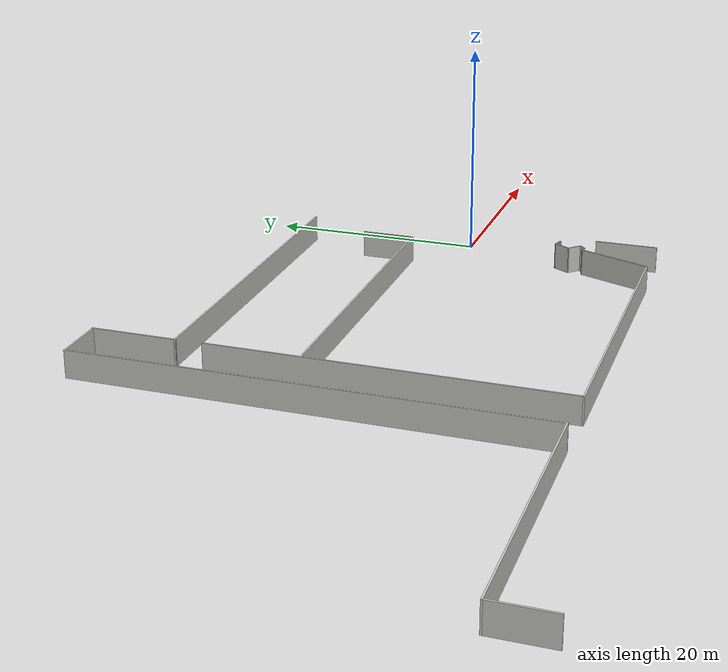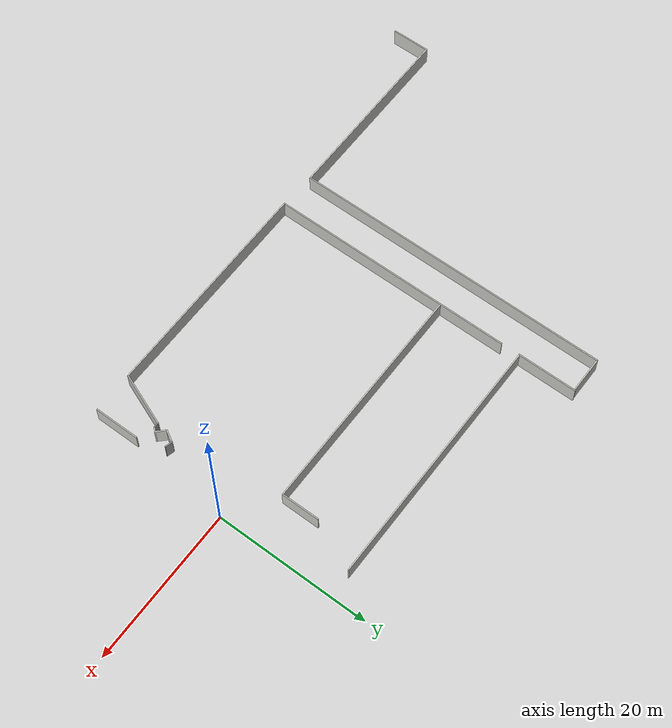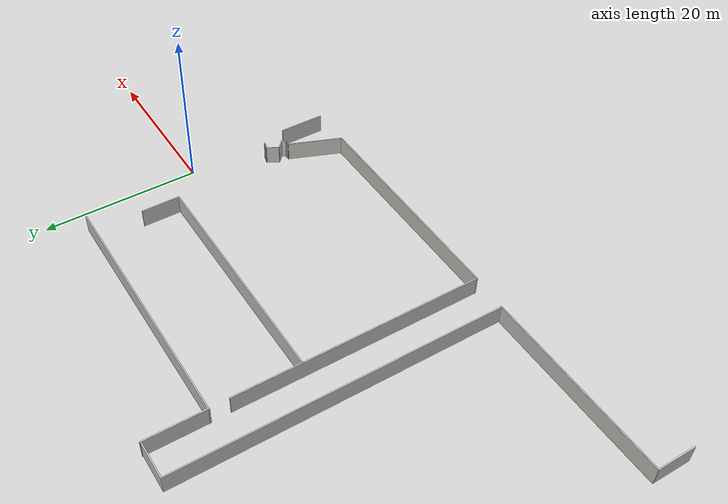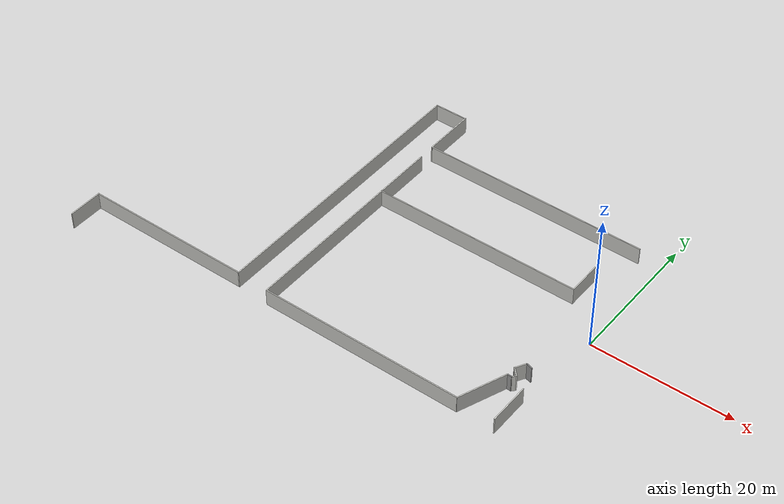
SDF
<sdf version="1.7">
 <model name="MIT_Tunnel_mod">
  <link name="Wall_10">
   <pose>-19.1952 15.5558 0 0 0 -0.001042</pose>
   <visual name="Wall_10_Visual">
    <pose>0 0 1.25 0 -0 0</pose>
    <geometry><box><size>32.6917 0.15 2.5</size></box></geometry>
    <material>
     <script><uri>file://media/materials/scripts/gazebo.material</uri><name>Gazebo/CeilingTiled</name></script>
     <ambient>1 1 1 1</ambient>
     <shader type="pixel"/>
    </material>
   </visual>
   <collision name="Wall_10_Collision">
    <pose>0 0 1.25 0 -0 0</pose>
    <geometry><box><size>32.6917 0.15 2.5</size></box></geometry>
    <surface>
     <friction>
      <ode><mu>1</mu><mu2>1</mu2><fdir1>0 0 0</fdir1><slip1>0</slip1><slip2>0</slip2></ode>
      <torsional>
       <coefficient>1</coefficient>
       <patch_radius>0</patch_radius>
       <surface_radius>0</surface_radius>
       <use_patch_radius>1</use_patch_radius>
       <ode><slip>0</slip></ode>
      </torsional>
     </friction>
     <bounce><restitution_coefficient>0</restitution_coefficient><threshold>1e+06</threshold></bounce>
     <contact>
      <collide_without_contact>0</collide_without_contact>
      <collide_without_contact_bitmask>1</collide_without_contact_bitmask>
      <collide_bitmask>1</collide_bitmask>
      <ode>
       <soft_cfm>0</soft_cfm>
       <soft_erp>0.2</soft_erp>
       <kp>1e+13</kp>
       <kd>1</kd>
       <max_vel>0.01</max_vel>
       <min_depth>0</min_depth>
      </ode>
      <bullet>
       <split_impulse>1</split_impulse>
       <split_impulse_penetration_threshold>-0.01</split_impulse_penetration_threshold>
       <soft_cfm>0</soft_cfm>
       <soft_erp>0.2</soft_erp>
       <kp>1e+13</kp>
       <kd>1</kd>
      </bullet>
     </contact>
    </surface>
   </collision>
  </link>
  <link name="Wall_2">
   <pose>-52.25 -18.2689 0 0 -0 0</pose>
   <visual name="Wall_2_Visual">
    <pose>0 0 1.25 0 -0 0</pose>
    <geometry><box><size>24.25 0.15 2.5</size></box></geometry>
    <material>
     <script><uri>file://media/materials/scripts/gazebo.material</uri><name>Gazebo/CeilingTiled</name></script>
     <ambient>1 1 1 1</ambient>
     <shader type="pixel"/>
    </material>
   </visual>
   <collision name="Wall_2_Collision">
    <pose>0 0 1.25 0 -0 0</pose>
    <geometry><box><size>24.25 0.15 2.5</size></box></geometry>
    <surface>
     <friction>
      <ode><mu>1</mu><mu2>1</mu2><fdir1>0 0 0</fdir1><slip1>0</slip1><slip2>0</slip2></ode>
      <torsional>
       <coefficient>1</coefficient>
       <patch_radius>0</patch_radius>
       <surface_radius>0</surface_radius>
       <use_patch_radius>1</use_patch_radius>
       <ode><slip>0</slip></ode>
      </torsional>
     </friction>
     <bounce><restitution_coefficient>0</restitution_coefficient><threshold>1e+06</threshold></bounce>
     <contact>
      <collide_without_contact>0</collide_without_contact>
      <collide_without_contact_bitmask>1</collide_without_contact_bitmask>
      <collide_bitmask>1</collide_bitmask>
      <ode>
       <soft_cfm>0</soft_cfm>
       <soft_erp>0.2</soft_erp>
       <kp>1e+13</kp>
       <kd>1</kd>
       <max_vel>0.01</max_vel>
       <min_depth>0</min_depth>
      </ode>
      <bullet>
       <split_impulse>1</split_impulse>
       <split_impulse_penetration_threshold>-0.01</split_impulse_penetration_threshold>
       <soft_cfm>0</soft_cfm>
       <soft_erp>0.2</soft_erp>
       <kp>1e+13</kp>
       <kd>1</kd>
      </bullet>
     </contact>
    </surface>
   </collision>
  </link>
  <link name="Wall_29">
   <pose>-1.14312 -15.679 0 0 0 -1.56921</pose>
   <visual name="Wall_29_Visual">
    <pose>0 0 1.25 0 -0 0</pose>
    <geometry><box><size>5.87777 0.15 2.5</size></box></geometry>
    <material>
     <script><uri>file://media/materials/scripts/gazebo.material</uri><name>Gazebo/CeilingTiled</name></script>
     <ambient>1 1 1 1</ambient>
     <shader type="pixel"/>
    </material>
   </visual>
   <collision name="Wall_29_Collision">
    <pose>0 0 1.25 0 -0 0</pose>
    <geometry><box><size>5.87777 0.15 2.5</size></box></geometry>
    <surface>
     <friction>
      <ode><mu>1</mu><mu2>1</mu2><fdir1>0 0 0</fdir1><slip1>0</slip1><slip2>0</slip2></ode>
      <torsional>
       <coefficient>1</coefficient>
       <patch_radius>0</patch_radius>
       <surface_radius>0</surface_radius>
       <use_patch_radius>1</use_patch_radius>
       <ode><slip>0</slip></ode>
      </torsional>
     </friction>
     <bounce><restitution_coefficient>0</restitution_coefficient><threshold>1e+06</threshold></bounce>
     <contact>
      <collide_without_contact>0</collide_without_contact>
      <collide_without_contact_bitmask>1</collide_without_contact_bitmask>
      <collide_bitmask>1</collide_bitmask>
      <ode>
       <soft_cfm>0</soft_cfm>
       <soft_erp>0.2</soft_erp>
       <kp>1e+13</kp>
       <kd>1</kd>
       <max_vel>0.01</max_vel>
       <min_depth>0</min_depth>
      </ode>
      <bullet>
       <split_impulse>1</split_impulse>
       <split_impulse_penetration_threshold>-0.01</split_impulse_penetration_threshold>
       <soft_cfm>0</soft_cfm>
       <soft_erp>0.2</soft_erp>
       <kp>1e+13</kp>
       <kd>1</kd>
      </bullet>
     </contact>
    </surface>
   </collision>
  </link>
  <link name="Wall_34">
   <pose>-64.3 -20.6939 0 0 0 -1.5708</pose>
   <visual name="Wall_34_Visual">
    <pose>0 0 1.25 0 -0 0</pose>
    <geometry><box><size>5 0.15 2.5</size></box></geometry>
    <material>
     <script><uri>file://media/materials/scripts/gazebo.material</uri><name>Gazebo/CeilingTiled</name></script>
     <ambient>1 1 1 1</ambient>
     <shader type="pixel"/>
    </material>
   </visual>
   <collision name="Wall_34_Collision">
    <pose>0 0 1.25 0 -0 0</pose>
    <geometry><box><size>5 0.15 2.5</size></box></geometry>
    <surface>
     <friction>
      <ode><mu>1</mu><mu2>1</mu2><fdir1>0 0 0</fdir1><slip1>0</slip1><slip2>0</slip2></ode>
      <torsional>
       <coefficient>1</coefficient>
       <patch_radius>0</patch_radius>
       <surface_radius>0</surface_radius>
       <use_patch_radius>1</use_patch_radius>
       <ode><slip>0</slip></ode>
      </torsional>
     </friction>
     <bounce><restitution_coefficient>0</restitution_coefficient><threshold>1e+06</threshold></bounce>
     <contact>
      <collide_without_contact>0</collide_without_contact>
      <collide_without_contact_bitmask>1</collide_without_contact_bitmask>
      <collide_bitmask>1</collide_bitmask>
      <ode>
       <soft_cfm>0</soft_cfm>
       <soft_erp>0.2</soft_erp>
       <kp>1e+13</kp>
       <kd>1</kd>
       <max_vel>0.01</max_vel>
       <min_depth>0</min_depth>
      </ode>
      <bullet>
       <split_impulse>1</split_impulse>
       <split_impulse_penetration_threshold>-0.01</split_impulse_penetration_threshold>
       <soft_cfm>0</soft_cfm>
       <soft_erp>0.2</soft_erp>
       <kp>1e+13</kp>
       <kd>1</kd>
      </bullet>
     </contact>
    </surface>
   </collision>
  </link>
  <link name="Wall_37">
   <pose>-37.9 23.0811 0 0 -0 0</pose>
   <visual name="Wall_37_Visual">
    <pose>0 0 1.25 0 -0 0</pose>
    <geometry><box><size>4.75 0.15 2.5</size></box></geometry>
    <material>
     <script><uri>file://media/materials/scripts/gazebo.material</uri><name>Gazebo/CeilingTiled</name></script>
     <ambient>1 1 1 1</ambient>
     <shader type="pixel"/>
    </material>
   </visual>
   <collision name="Wall_37_Collision">
    <pose>0 0 1.25 0 -0 0</pose>
    <geometry><box><size>4.75 0.15 2.5</size></box></geometry>
    <surface>
     <friction>
      <ode><mu>1</mu><mu2>1</mu2><fdir1>0 0 0</fdir1><slip1>0</slip1><slip2>0</slip2></ode>
      <torsional>
       <coefficient>1</coefficient>
       <patch_radius>0</patch_radius>
       <surface_radius>0</surface_radius>
       <use_patch_radius>1</use_patch_radius>
       <ode><slip>0</slip></ode>
      </torsional>
     </friction>
     <bounce><restitution_coefficient>0</restitution_coefficient><threshold>1e+06</threshold></bounce>
     <contact>
      <collide_without_contact>0</collide_without_contact>
      <collide_without_contact_bitmask>1</collide_without_contact_bitmask>
      <collide_bitmask>1</collide_bitmask>
      <ode>
       <soft_cfm>0</soft_cfm>
       <soft_erp>0.2</soft_erp>
       <kp>1e+13</kp>
       <kd>1</kd>
       <max_vel>0.01</max_vel>
       <min_depth>0</min_depth>
      </ode>
      <bullet>
       <split_impulse>1</split_impulse>
       <split_impulse_penetration_threshold>-0.01</split_impulse_penetration_threshold>
       <soft_cfm>0</soft_cfm>
       <soft_erp>0.2</soft_erp>
       <kp>1e+13</kp>
       <kd>1</kd>
      </bullet>
     </contact>
    </surface>
   </collision>
  </link>
  <link name="Wall_41">
   <pose>-35.4175 -2.72616 0 0 -0 1.5708</pose>
   <visual name="Wall_41_Visual">
    <pose>0 0 1.25 0 -0 0</pose>
    <geometry><box><size>31.75 0.15 2.5</size></box></geometry>
    <material>
     <script><uri>file://media/materials/scripts/gazebo.material</uri><name>Gazebo/CeilingTiled</name></script>
     <ambient>1 1 1 1</ambient>
     <shader type="pixel"/>
    </material>
   </visual>
   <collision name="Wall_41_Collision">
    <pose>0 0 1.25 0 -0 0</pose>
    <geometry><box><size>31.75 0.15 2.5</size></box></geometry>
    <surface>
     <friction>
      <ode><mu>1</mu><mu2>1</mu2><fdir1>0 0 0</fdir1><slip1>0</slip1><slip2>0</slip2></ode>
      <torsional>
       <coefficient>1</coefficient>
       <patch_radius>0</patch_radius>
       <surface_radius>0</surface_radius>
       <use_patch_radius>1</use_patch_radius>
       <ode><slip>0</slip></ode>
      </torsional>
     </friction>
     <bounce><restitution_coefficient>0</restitution_coefficient><threshold>1e+06</threshold></bounce>
     <contact>
      <collide_without_contact>0</collide_without_contact>
      <collide_without_contact_bitmask>1</collide_without_contact_bitmask>
      <collide_bitmask>1</collide_bitmask>
      <ode>
       <soft_cfm>0</soft_cfm>
       <soft_erp>0.2</soft_erp>
       <kp>1e+13</kp>
       <kd>1</kd>
       <max_vel>0.01</max_vel>
       <min_depth>0</min_depth>
      </ode>
      <bullet>
       <split_impulse>1</split_impulse>
       <split_impulse_penetration_threshold>-0.01</split_impulse_penetration_threshold>
       <soft_cfm>0</soft_cfm>
       <soft_erp>0.2</soft_erp>
       <kp>1e+13</kp>
       <kd>1</kd>
      </bullet>
     </contact>
    </surface>
   </collision>
  </link>
  <link name="Wall_43">
   <pose>-20.4925 4.50154 0 0 -0 0</pose>
   <visual name="Wall_43_Visual">
    <pose>0 0 1.25 0 -0 0</pose>
    <geometry><box><size>30 0.15 2.5</size></box></geometry>
    <material>
     <script><uri>file://media/materials/scripts/gazebo.material</uri><name>Gazebo/CeilingTiled</name></script>
     <ambient>1 1 1 1</ambient>
     <shader type="pixel"/>
    </material>
   </visual>
   <collision name="Wall_43_Collision">
    <pose>0 0 1.25 0 -0 0</pose>
    <geometry><box><size>30 0.15 2.5</size></box></geometry>
    <surface>
     <friction>
      <ode><mu>1</mu><mu2>1</mu2><fdir1>0 0 0</fdir1><slip1>0</slip1><slip2>0</slip2></ode>
      <torsional>
       <coefficient>1</coefficient>
       <patch_radius>0</patch_radius>
       <surface_radius>0</surface_radius>
       <use_patch_radius>1</use_patch_radius>
       <ode><slip>0</slip></ode>
      </torsional>
     </friction>
     <bounce><restitution_coefficient>0</restitution_coefficient><threshold>1e+06</threshold></bounce>
     <contact>
      <collide_without_contact>0</collide_without_contact>
      <collide_without_contact_bitmask>1</collide_without_contact_bitmask>
      <collide_bitmask>1</collide_bitmask>
      <ode>
       <soft_cfm>0</soft_cfm>
       <soft_erp>0.2</soft_erp>
       <kp>1e+13</kp>
       <kd>1</kd>
       <max_vel>0.01</max_vel>
       <min_depth>0</min_depth>
      </ode>
      <bullet>
       <split_impulse>1</split_impulse>
       <split_impulse_penetration_threshold>-0.01</split_impulse_penetration_threshold>
       <soft_cfm>0</soft_cfm>
       <soft_erp>0.2</soft_erp>
       <kp>1e+13</kp>
       <kd>1</kd>
      </bullet>
     </contact>
    </surface>
   </collision>
  </link>
  <link name="Wall_44">
   <pose>-5.56746 6.92907 0 0 0 -1.5708</pose>
   <inertial>
    <mass>1</mass>
    <inertia><ixx>1</ixx><ixy>0</ixy><ixz>0</ixz><iyy>1</iyy><iyz>0</iyz><izz>1</izz></inertia>
   </inertial>
   <visual name="Wall_44_Visual">
    <pose>0 0 1.25 0 -0 0</pose>
    <geometry><box><size>5 0.15 2.5</size></box></geometry>
    <material>
     <script><uri>file://media/materials/scripts/gazebo.material</uri><name>Gazebo/CeilingTiled</name></script>
     <ambient>1 1 1 1</ambient>
     <shader type="pixel"><normal_map>__default__</normal_map></shader>
     <diffuse>1 1 1 1</diffuse>
     <specular>0 0 0 1</specular>
     <emissive>0 0 0 1</emissive>
    </material>
   </visual>
   <collision name="Wall_44_Collision">
    <pose>0 0 1.25 0 -0 0</pose>
    <geometry><box><size>5 0.15 2.5</size></box></geometry>
    <surface>
     <friction>
      <ode><mu>1</mu><mu2>1</mu2><fdir1>0 0 0</fdir1><slip1>0</slip1><slip2>0</slip2></ode>
      <torsional>
       <coefficient>1</coefficient>
       <patch_radius>0</patch_radius>
       <surface_radius>0</surface_radius>
       <use_patch_radius>1</use_patch_radius>
       <ode><slip>0</slip></ode>
      </torsional>
     </friction>
     <bounce><restitution_coefficient>0</restitution_coefficient><threshold>1e+06</threshold></bounce>
     <contact>
      <collide_without_contact>0</collide_without_contact>
      <collide_without_contact_bitmask>1</collide_without_contact_bitmask>
      <collide_bitmask>1</collide_bitmask>
      <ode>
       <soft_cfm>0</soft_cfm>
       <soft_erp>0.2</soft_erp>
       <kp>1e+13</kp>
       <kd>1</kd>
       <max_vel>0.01</max_vel>
       <min_depth>0</min_depth>
      </ode>
      <bullet>
       <split_impulse>1</split_impulse>
       <split_impulse_penetration_threshold>-0.01</split_impulse_penetration_threshold>
       <soft_cfm>0</soft_cfm>
       <soft_erp>0.2</soft_erp>
       <kp>1e+13</kp>
       <kd>1</kd>
      </bullet>
     </contact>
    </surface>
   </collision>
  </link>
  <link name="Wall_5">
   <pose>-40.2 2.40609 0 0 -0 1.5708</pose>
   <visual name="Wall_5_Visual">
    <pose>0 0 1.25 0 -0 0</pose>
    <geometry><box><size>41.5 0.15 2.5</size></box></geometry>
    <material>
     <script><uri>file://media/materials/scripts/gazebo.material</uri><name>Gazebo/CeilingTiled</name></script>
     <ambient>1 1 1 1</ambient>
     <shader type="pixel"/>
    </material>
   </visual>
   <collision name="Wall_5_Collision">
    <pose>0 0 1.25 0 -0 0</pose>
    <geometry><box><size>41.5 0.15 2.5</size></box></geometry>
    <surface>
     <friction>
      <ode><mu>1</mu><mu2>1</mu2><fdir1>0 0 0</fdir1><slip1>0</slip1><slip2>0</slip2></ode>
      <torsional>
       <coefficient>1</coefficient>
       <patch_radius>0</patch_radius>
       <surface_radius>0</surface_radius>
       <use_patch_radius>1</use_patch_radius>
       <ode><slip>0</slip></ode>
      </torsional>
     </friction>
     <bounce><restitution_coefficient>0</restitution_coefficient><threshold>1e+06</threshold></bounce>
     <contact>
      <collide_without_contact>0</collide_without_contact>
      <collide_without_contact_bitmask>1</collide_without_contact_bitmask>
      <collide_bitmask>1</collide_bitmask>
      <ode>
       <soft_cfm>0</soft_cfm>
       <soft_erp>0.2</soft_erp>
       <kp>1e+13</kp>
       <kd>1</kd>
       <max_vel>0.01</max_vel>
       <min_depth>0</min_depth>
      </ode>
      <bullet>
       <split_impulse>1</split_impulse>
       <split_impulse_penetration_threshold>-0.01</split_impulse_penetration_threshold>
       <soft_cfm>0</soft_cfm>
       <soft_erp>0.2</soft_erp>
       <kp>1e+13</kp>
       <kd>1</kd>
      </bullet>
     </contact>
    </surface>
   </collision>
  </link>
  <link name="Wall_50">
   <pose>-2.6617 -9.34526 0 0 -0 2.87979</pose>
   <visual name="Wall_50_Visual">
    <pose>0 0 1.25 0 -0 0</pose>
    <geometry><box><size>1 0.15 2.5</size></box></geometry>
    <material>
     <script><uri>file://media/materials/scripts/gazebo.material</uri><name>Gazebo/Grey</name></script>
     <ambient>1 1 1 1</ambient>
     <shader type="pixel"/>
    </material>
   </visual>
   <collision name="Wall_50_Collision">
    <pose>0 0 1.25 0 -0 0</pose>
    <geometry><box><size>1 0.15 2.5</size></box></geometry>
    <surface>
     <friction>
      <ode><mu>1</mu><mu2>1</mu2><fdir1>0 0 0</fdir1><slip1>0</slip1><slip2>0</slip2></ode>
      <torsional>
       <coefficient>1</coefficient>
       <patch_radius>0</patch_radius>
       <surface_radius>0</surface_radius>
       <use_patch_radius>1</use_patch_radius>
       <ode><slip>0</slip></ode>
      </torsional>
     </friction>
     <bounce><restitution_coefficient>0</restitution_coefficient><threshold>1e+06</threshold></bounce>
     <contact>
      <collide_without_contact>0</collide_without_contact>
      <collide_without_contact_bitmask>1</collide_without_contact_bitmask>
      <collide_bitmask>1</collide_bitmask>
      <ode>
       <soft_cfm>0</soft_cfm>
       <soft_erp>0.2</soft_erp>
       <kp>1e+13</kp>
       <kd>1</kd>
       <max_vel>0.01</max_vel>
       <min_depth>0</min_depth>
      </ode>
      <bullet>
       <split_impulse>1</split_impulse>
       <split_impulse_penetration_threshold>-0.01</split_impulse_penetration_threshold>
       <soft_cfm>0</soft_cfm>
       <soft_erp>0.2</soft_erp>
       <kp>1e+13</kp>
       <kd>1</kd>
      </bullet>
     </contact>
    </surface>
   </collision>
  </link>
  <link name="Wall_51">
   <pose>-3.47221 -9.92808 0 0 0 -2.0944</pose>
   <visual name="Wall_51_Visual">
    <pose>0 0 1.25 0 -0 0</pose>
    <geometry><box><size>1.75 0.15 2.5</size></box></geometry>
    <material>
     <script><uri>file://media/materials/scripts/gazebo.material</uri><name>Gazebo/CeilingTiled</name></script>
     <ambient>1 1 1 1</ambient>
     <shader type="pixel"/>
    </material>
   </visual>
   <collision name="Wall_51_Collision">
    <pose>0 0 1.25 0 -0 0</pose>
    <geometry><box><size>1.75 0.15 2.5</size></box></geometry>
    <surface>
     <friction>
      <ode><mu>1</mu><mu2>1</mu2><fdir1>0 0 0</fdir1><slip1>0</slip1><slip2>0</slip2></ode>
      <torsional>
       <coefficient>1</coefficient>
       <patch_radius>0</patch_radius>
       <surface_radius>0</surface_radius>
       <use_patch_radius>1</use_patch_radius>
       <ode><slip>0</slip></ode>
      </torsional>
     </friction>
     <bounce><restitution_coefficient>0</restitution_coefficient><threshold>1e+06</threshold></bounce>
     <contact>
      <collide_without_contact>0</collide_without_contact>
      <collide_without_contact_bitmask>1</collide_without_contact_bitmask>
      <collide_bitmask>1</collide_bitmask>
      <ode>
       <soft_cfm>0</soft_cfm>
       <soft_erp>0.2</soft_erp>
       <kp>1e+13</kp>
       <kd>1</kd>
       <max_vel>0.01</max_vel>
       <min_depth>0</min_depth>
      </ode>
      <bullet>
       <split_impulse>1</split_impulse>
       <split_impulse_penetration_threshold>-0.01</split_impulse_penetration_threshold>
       <soft_cfm>0</soft_cfm>
       <soft_erp>0.2</soft_erp>
       <kp>1e+13</kp>
       <kd>1</kd>
      </bullet>
     </contact>
    </surface>
   </collision>
  </link>
  <link name="Wall_52">
   <pose>-3.39492 -11.0982 0 0 0 -0.785398</pose>
   <visual name="Wall_52_Visual">
    <pose>0 0 1.25 0 -0 0</pose>
    <geometry><box><size>1.5 0.15 2.5</size></box></geometry>
    <material>
     <script><uri>file://media/materials/scripts/gazebo.material</uri><name>Gazebo/CeilingTiled</name></script>
     <ambient>1 1 1 1</ambient>
     <shader type="pixel"/>
    </material>
   </visual>
   <collision name="Wall_52_Collision">
    <pose>0 0 1.25 0 -0 0</pose>
    <geometry><box><size>1.5 0.15 2.5</size></box></geometry>
    <surface>
     <friction>
      <ode><mu>1</mu><mu2>1</mu2><fdir1>0 0 0</fdir1><slip1>0</slip1><slip2>0</slip2></ode>
      <torsional>
       <coefficient>1</coefficient>
       <patch_radius>0</patch_radius>
       <surface_radius>0</surface_radius>
       <use_patch_radius>1</use_patch_radius>
       <ode><slip>0</slip></ode>
      </torsional>
     </friction>
     <bounce><restitution_coefficient>0</restitution_coefficient><threshold>1e+06</threshold></bounce>
     <contact>
      <collide_without_contact>0</collide_without_contact>
      <collide_without_contact_bitmask>1</collide_without_contact_bitmask>
      <collide_bitmask>1</collide_bitmask>
      <ode>
       <soft_cfm>0</soft_cfm>
       <soft_erp>0.2</soft_erp>
       <kp>1e+13</kp>
       <kd>1</kd>
       <max_vel>0.01</max_vel>
       <min_depth>0</min_depth>
      </ode>
      <bullet>
       <split_impulse>1</split_impulse>
       <split_impulse_penetration_threshold>-0.01</split_impulse_penetration_threshold>
       <soft_cfm>0</soft_cfm>
       <soft_erp>0.2</soft_erp>
       <kp>1e+13</kp>
       <kd>1</kd>
      </bullet>
     </contact>
    </surface>
   </collision>
  </link>
  <link name="Wall_53">
   <pose>-3.12975 -11.7876 0 0 0 -2.35619</pose>
   <visual name="Wall_53_Visual">
    <pose>0 0 1.25 0 -0 0</pose>
    <geometry><box><size>0.75 0.15 2.5</size></box></geometry>
    <material>
     <script><uri>file://media/materials/scripts/gazebo.material</uri><name>Gazebo/CeilingTiled</name></script>
     <ambient>1 1 1 1</ambient>
     <shader type="pixel"/>
    </material>
   </visual>
   <collision name="Wall_53_Collision">
    <pose>0 0 1.25 0 -0 0</pose>
    <geometry><box><size>0.75 0.15 2.5</size></box></geometry>
    <surface>
     <friction>
      <ode><mu>1</mu><mu2>1</mu2><fdir1>0 0 0</fdir1><slip1>0</slip1><slip2>0</slip2></ode>
      <torsional>
       <coefficient>1</coefficient>
       <patch_radius>0</patch_radius>
       <surface_radius>0</surface_radius>
       <use_patch_radius>1</use_patch_radius>
       <ode><slip>0</slip></ode>
      </torsional>
     </friction>
     <bounce><restitution_coefficient>0</restitution_coefficient><threshold>1e+06</threshold></bounce>
     <contact>
      <collide_without_contact>0</collide_without_contact>
      <collide_without_contact_bitmask>1</collide_without_contact_bitmask>
      <collide_bitmask>1</collide_bitmask>
      <ode>
       <soft_cfm>0</soft_cfm>
       <soft_erp>0.2</soft_erp>
       <kp>1e+13</kp>
       <kd>1</kd>
       <max_vel>0.01</max_vel>
       <min_depth>0</min_depth>
      </ode>
      <bullet>
       <split_impulse>1</split_impulse>
       <split_impulse_penetration_threshold>-0.01</split_impulse_penetration_threshold>
       <soft_cfm>0</soft_cfm>
       <soft_erp>0.2</soft_erp>
       <kp>1e+13</kp>
       <kd>1</kd>
      </bullet>
     </contact>
    </surface>
   </collision>
  </link>
  <link name="Wall_54">
   <pose>-3.64188 -11.9998 0 0 -0 3.14159</pose>
   <visual name="Wall_54_Visual">
    <pose>0 0 1.25 0 -0 0</pose>
    <geometry><box><size>0.75 0.15 2.5</size></box></geometry>
    <material>
     <script><uri>file://media/materials/scripts/gazebo.material</uri><name>Gazebo/Grey</name></script>
     <ambient>1 1 1 1</ambient>
     <shader type="pixel"/>
    </material>
   </visual>
   <collision name="Wall_54_Collision">
    <pose>0 0 1.25 0 -0 0</pose>
    <geometry><box><size>0.75 0.15 2.5</size></box></geometry>
    <surface>
     <friction>
      <ode><mu>1</mu><mu2>1</mu2><fdir1>0 0 0</fdir1><slip1>0</slip1><slip2>0</slip2></ode>
      <torsional>
       <coefficient>1</coefficient>
       <patch_radius>0</patch_radius>
       <surface_radius>0</surface_radius>
       <use_patch_radius>1</use_patch_radius>
       <ode><slip>0</slip></ode>
      </torsional>
     </friction>
     <bounce><restitution_coefficient>0</restitution_coefficient><threshold>1e+06</threshold></bounce>
     <contact>
      <collide_without_contact>0</collide_without_contact>
      <collide_without_contact_bitmask>1</collide_without_contact_bitmask>
      <collide_bitmask>1</collide_bitmask>
      <ode>
       <soft_cfm>0</soft_cfm>
       <soft_erp>0.2</soft_erp>
       <kp>1e+13</kp>
       <kd>1</kd>
       <max_vel>0.01</max_vel>
       <min_depth>0</min_depth>
      </ode>
      <bullet>
       <split_impulse>1</split_impulse>
       <split_impulse_penetration_threshold>-0.01</split_impulse_penetration_threshold>
       <soft_cfm>0</soft_cfm>
       <soft_erp>0.2</soft_erp>
       <kp>1e+13</kp>
       <kd>1</kd>
      </bullet>
     </contact>
    </surface>
   </collision>
  </link>
  <link name="Wall_55">
   <pose>-5.21192 -15.2524 0 0 0 -1.94306</pose>
   <visual name="Wall_55_Visual">
    <pose>0 0 1.25 0 -0 0</pose>
    <geometry><box><size>7.13355 0.15 2.5</size></box></geometry>
    <material>
     <script><uri>file://media/materials/scripts/gazebo.material</uri><name>Gazebo/CeilingTiled</name></script>
     <ambient>1 1 1 1</ambient>
     <shader type="pixel"/>
    </material>
   </visual>
   <collision name="Wall_55_Collision">
    <pose>0 0 1.25 0 -0 0</pose>
    <geometry><box><size>7.13355 0.15 2.5</size></box></geometry>
    <surface>
     <friction>
      <ode><mu>1</mu><mu2>1</mu2><fdir1>0 0 0</fdir1><slip1>0</slip1><slip2>0</slip2></ode>
      <torsional>
       <coefficient>1</coefficient>
       <patch_radius>0</patch_radius>
       <surface_radius>0</surface_radius>
       <use_patch_radius>1</use_patch_radius>
       <ode><slip>0</slip></ode>
      </torsional>
     </friction>
     <bounce><restitution_coefficient>0</restitution_coefficient><threshold>1e+06</threshold></bounce>
     <contact>
      <collide_without_contact>0</collide_without_contact>
      <collide_without_contact_bitmask>1</collide_without_contact_bitmask>
      <collide_bitmask>1</collide_bitmask>
      <ode>
       <soft_cfm>0</soft_cfm>
       <soft_erp>0.2</soft_erp>
       <kp>1e+13</kp>
       <kd>1</kd>
       <max_vel>0.01</max_vel>
       <min_depth>0</min_depth>
      </ode>
      <bullet>
       <split_impulse>1</split_impulse>
       <split_impulse_penetration_threshold>-0.01</split_impulse_penetration_threshold>
       <soft_cfm>0</soft_cfm>
       <soft_erp>0.2</soft_erp>
       <kp>1e+13</kp>
       <kd>1</kd>
      </bullet>
     </contact>
    </surface>
   </collision>
  </link>
  <link name="Wall_57">
   <pose>-20.9925 -18.5262 0 0 -0 0</pose>
   <visual name="Wall_57_Visual">
    <pose>0 0 1.25 0 -0 0</pose>
    <geometry><box><size>29 0.15 2.5</size></box></geometry>
    <material>
     <script><uri>file://media/materials/scripts/gazebo.material</uri><name>Gazebo/CeilingTiled</name></script>
     <ambient>1 1 1 1</ambient>
     <shader type="pixel"/>
    </material>
   </visual>
   <collision name="Wall_57_Collision">
    <pose>0 0 1.25 0 -0 0</pose>
    <geometry><box><size>29 0.15 2.5</size></box></geometry>
    <surface>
     <friction>
      <ode><mu>1</mu><mu2>1</mu2><fdir1>0 0 0</fdir1><slip1>0</slip1><slip2>0</slip2></ode>
      <torsional>
       <coefficient>1</coefficient>
       <patch_radius>0</patch_radius>
       <surface_radius>0</surface_radius>
       <use_patch_radius>1</use_patch_radius>
       <ode><slip>0</slip></ode>
      </torsional>
     </friction>
     <bounce><restitution_coefficient>0</restitution_coefficient><threshold>1e+06</threshold></bounce>
     <contact>
      <collide_without_contact>0</collide_without_contact>
      <collide_without_contact_bitmask>1</collide_without_contact_bitmask>
      <collide_bitmask>1</collide_bitmask>
      <ode>
       <soft_cfm>0</soft_cfm>
       <soft_erp>0.2</soft_erp>
       <kp>1e+13</kp>
       <kd>1</kd>
       <max_vel>0.01</max_vel>
       <min_depth>0</min_depth>
      </ode>
      <bullet>
       <split_impulse>1</split_impulse>
       <split_impulse_penetration_threshold>-0.01</split_impulse_penetration_threshold>
       <soft_cfm>0</soft_cfm>
       <soft_erp>0.2</soft_erp>
       <kp>1e+13</kp>
       <kd>1</kd>
      </bullet>
     </contact>
    </surface>
   </collision>
  </link>
  <link name="Wall_9">
   <pose>-35.4657 19.3427 0 0 0 -1.5708</pose>
   <visual name="Wall_9_Visual">
    <pose>0 0 1.25 0 -0 0</pose>
    <geometry><box><size>7.75 0.15 2.5</size></box></geometry>
    <material>
     <script><uri>file://media/materials/scripts/gazebo.material</uri><name>Gazebo/CeilingTiled</name></script>
     <ambient>1 1 1 1</ambient>
     <shader type="pixel"/>
    </material>
   </visual>
   <collision name="Wall_9_Collision">
    <pose>0 0 1.25 0 -0 0</pose>
    <geometry><box><size>7.75 0.15 2.5</size></box></geometry>
    <surface>
     <friction>
      <ode><mu>1</mu><mu2>1</mu2><fdir1>0 0 0</fdir1><slip1>0</slip1><slip2>0</slip2></ode>
      <torsional>
       <coefficient>1</coefficient>
       <patch_radius>0</patch_radius>
       <surface_radius>0</surface_radius>
       <use_patch_radius>1</use_patch_radius>
       <ode><slip>0</slip></ode>
      </torsional>
     </friction>
     <bounce><restitution_coefficient>0</restitution_coefficient><threshold>1e+06</threshold></bounce>
     <contact>
      <collide_without_contact>0</collide_without_contact>
      <collide_without_contact_bitmask>1</collide_without_contact_bitmask>
      <collide_bitmask>1</collide_bitmask>
      <ode>
       <soft_cfm>0</soft_cfm>
       <soft_erp>0.2</soft_erp>
       <kp>1e+13</kp>
       <kd>1</kd>
       <max_vel>0.01</max_vel>
       <min_depth>0</min_depth>
      </ode>
      <bullet>
       <split_impulse>1</split_impulse>
       <split_impulse_penetration_threshold>-0.01</split_impulse_penetration_threshold>
       <soft_cfm>0</soft_cfm>
       <soft_erp>0.2</soft_erp>
       <kp>1e+13</kp>
       <kd>1</kd>
      </bullet>
     </contact>
    </surface>
   </collision>
  </link>
  <static>1</static>
 </model>
</sdf>
